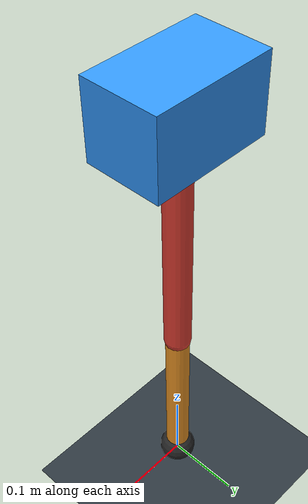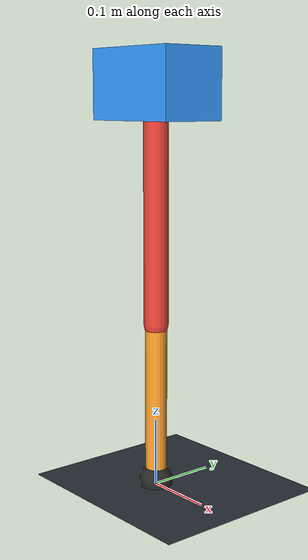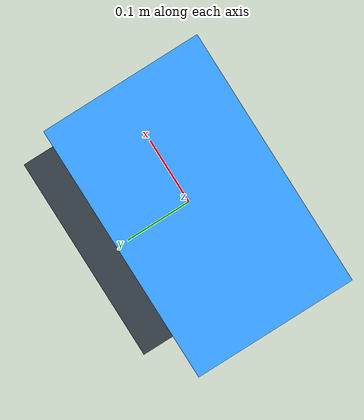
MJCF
<mujoco model="single_axis_two_bar">
  <compiler angle="radian" inertiafromgeom="true"/>
  <option timestep="0.001" integrator="implicitfast" gravity="0 0 -9.81"/>
  <default>
    <joint damping="0.08"/>
    <geom friction="1.2 0.01 0.0001" condim="3"/>
  </default>
  <worldbody>
    <geom name="floor" type="plane" size="5 5 0.1" rgba="0.18 0.22 0.25 1"/>
    <body name="carriage" pos="0 0 0.5882261038805514">
      <joint name="pole_slide" type="slide" axis="0 0 1"/>
      <geom name="payload" type="box" size="0.08 0.05 0.05" mass="2.5248319695449415" rgba="0.2 0.6 1 1"/>
      <body name="thigh" pos="0 0 0">
        <joint name="hip" type="hinge" axis="0 1 0"/>
        <geom name="thigh_link" type="capsule" fromto="0 0 0 0 0 -0.34394030841736795" size="0.018" mass="0.24506201451757276" rgba="0.9 0.25 0.2 1"/>
        <body name="shank" pos="0 0 -0.34394030841736795">
          <joint name="knee" type="hinge" axis="0 1 0"/>
          <geom name="shank_link" type="capsule" fromto="0 0 0 0 0 -0.2367051595007263" size="0.016" mass="0.16865555392699114" rgba="0.95 0.6 0.15 1"/>
          <geom name="foot" type="sphere" pos="0 0 -0.2367051595007263" size="0.025" mass="0.03" rgba="0.15 0.15 0.15 1"/>
          <site name="toe" pos="0 0 -0.2367051595007263" size="0.008"/>
        </body>
      </body>
    </body>
  </worldbody>
  <actuator>
    <motor name="hip_motor" joint="hip" ctrlrange="-28.40344984262077 28.40344984262077"/>
    <motor name="knee_motor" joint="knee" ctrlrange="-102.23756914494797 102.23756914494797"/>
  </actuator>
</mujoco>
